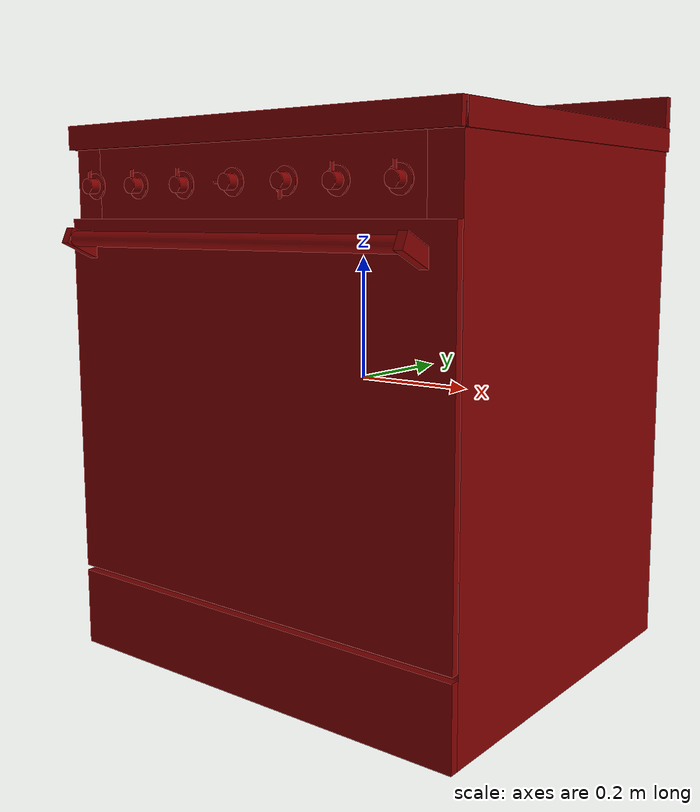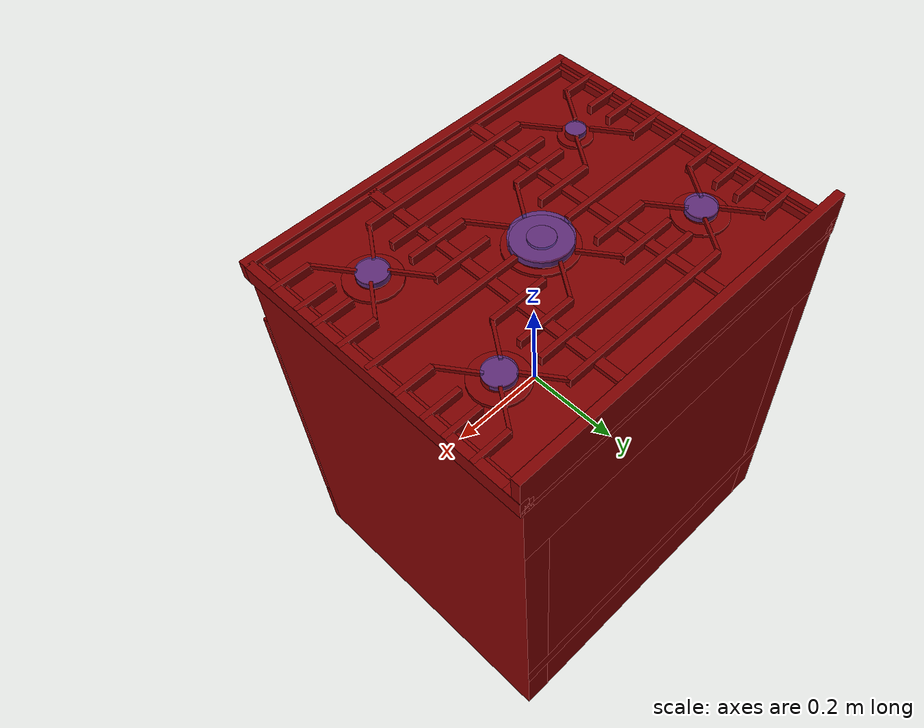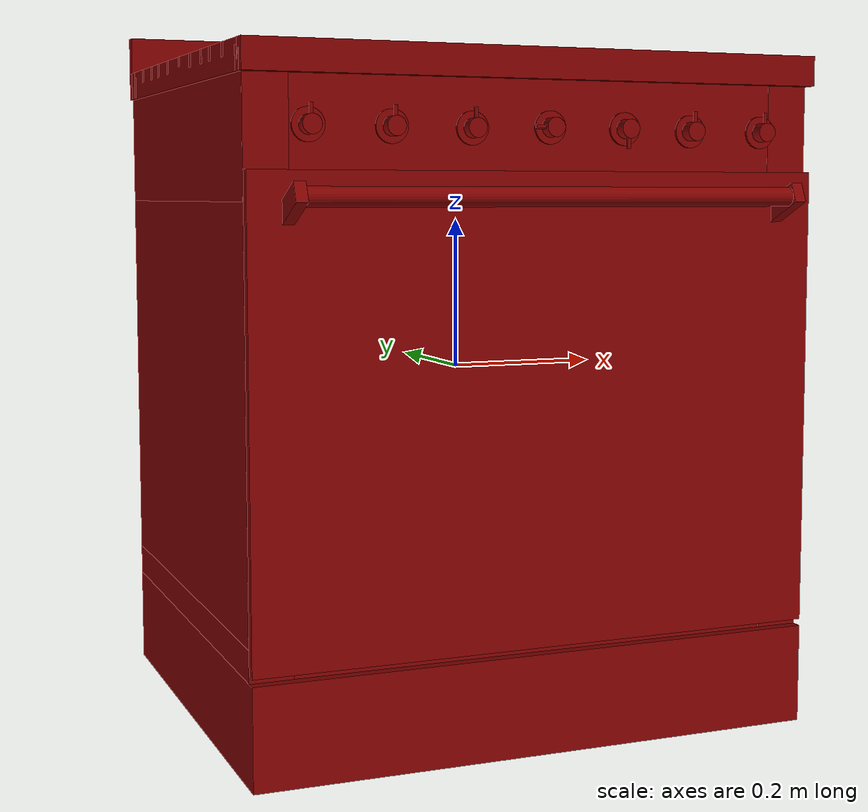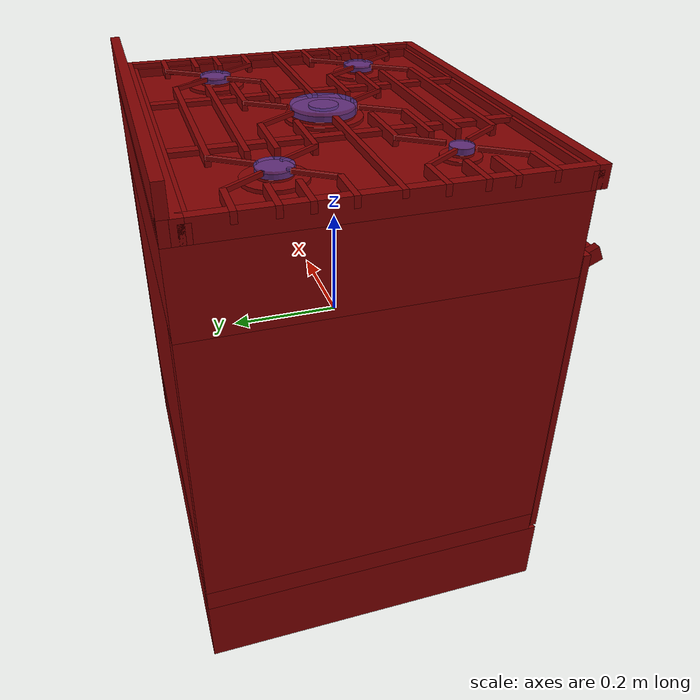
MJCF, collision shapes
<?xml version='1.0' encoding='UTF-8'?>
<mujoco model="model">
  <option timestep="0.002" gravity="0.0 0.0 -9.81"/>
  <compiler angle="radian"/>
  <asset>
    <mesh file="visuals/knob_center.obj" name="knob_center_vis"/>
    <mesh file="visuals/knob_front_left.obj" name="knob_front_left_vis"/>
    <mesh file="visuals/knob_front_right.obj" name="knob_front_right_vis"/>
    <mesh file="visuals/knob_rear_left.obj" name="knob_rear_left_vis"/>
    <mesh file="visuals/knob_rear_right.obj" name="knob_rear_right_vis"/>
    <mesh file="visuals/Body001.obj" name="Body001_vis"/>
    <mesh file="visuals/Door001.obj" name="Door001_vis"/>
    <mesh file="visuals/Door001_Clear.obj" name="Door001_Clear_vis"/>
    <mesh file="visuals/Knob001.obj" name="Knob001_vis"/>
    <mesh file="visuals/Knob002.obj" name="Knob002_vis"/>
    <mesh file="visuals/Shelf001.obj" name="Shelf001_vis"/>
    <texture file="visuals/T_BC001.png" name="Body001_material" type="2d"/>
    <material name="Body001_material" rgba="1 1 1 1.0" texture="Body001_material" shininess="0.1" specular="4"/>
    <texture file="visuals/T_BC001.png" name="knob_center_material" type="2d"/>
    <material name="knob_center_material" rgba="1 1 1 1.0" texture="knob_center_material" shininess="0.4472135901451111" specular="0.3103448502657381"/>
    <texture file="visuals/T_BC001.png" name="knob_front_left_material" type="2d"/>
    <material name="knob_front_left_material" rgba="1 1 1 1.0" texture="knob_front_left_material" shininess="0.4472135901451111" specular="0.3103448502657381"/>
    <texture file="visuals/T_BC001.png" name="knob_front_right_material" type="2d"/>
    <material name="knob_front_right_material" rgba="1 1 1 1.0" texture="knob_front_right_material" shininess="0.4472135901451111" specular="0.3103448502657381"/>
    <texture file="visuals/T_BC001.png" name="knob_rear_left_material" type="2d"/>
    <material name="knob_rear_left_material" rgba="1 1 1 1.0" texture="knob_rear_left_material" shininess="0.4472135901451111" specular="0.3103448502657381"/>
    <texture file="visuals/T_BC001.png" name="knob_rear_right_material" type="2d"/>
    <material name="knob_rear_right_material" rgba="1 1 1 1.0" texture="knob_rear_right_material" shininess="0.4472135901451111" specular="0.3103448502657381"/>
    <texture file="visuals/T_BC001.png" name="Door001_material" type="2d"/>
    <material name="Door001_material" rgba="1 1 1 1.0" texture="Door001_material" shininess="0.1" specular="0.3103448502657381"/>
    <texture file="visuals/T_BC001.png" name="Door001_Clear_material" type="2d"/>
    <material name="Door001_Clear_material" rgba="1 1 1 0.5" texture="Door001_Clear_material" shininess="0.4472135901451111" specular="0.3103448502657381"/>
    <texture file="visuals/T_BC001.png" name="Knob001_material" type="2d"/>
    <material name="Knob001_material" rgba="1 1 1 1.0" texture="Knob001_material" shininess="0.4472135901451111" specular="0.3103448502657381"/>
    <texture file="visuals/T_BC001.png" name="Knob002_material" type="2d"/>
    <material name="Knob002_material" rgba="1 1 1 1.0" texture="Knob002_material" shininess="0.4472135901451111" specular="0.3103448502657381"/>
    <texture file="visuals/T_BC001.png" name="Shelf001_material" type="2d"/>
    <material name="Shelf001_material" rgba="1 1 1 1.0" texture="Shelf001_material" shininess="0.1" specular="4"/>
  </asset>
  <default>
    <default class="visual">
      <geom conaffinity="0" contype="0" group="1" type="mesh"/>
    </default>
    <default class="collision">
      <geom group="0" rgba="0.5 0 0 0.5"/>
    </default>
    <default class="spawn">
      <geom group="0" rgba="1 1 1 0.5" contype="0" conaffinity="0"/>
      <site group="0" rgba="1 1 1 0.5"/>
    </default>
    <default class="region">
      <geom group="1" conaffinity="0" contype="0" rgba="0 1 0 0"/>
    </default>
  </default>
  <worldbody>
    <body>
      <body name="object">
        <geom mesh="Body001_vis" type="mesh" solimp="0.998 0.998 0.001" solref="0.001 1" friction="0.95 0.3 0.1" class="visual" material="Body001_material"/>
        <geom class="collision" type="box" pos="-0.342986 0.031909 -0.043688" size="0.027025170624256134 0.3089369833469391 0.41411277651786804" quat="1.0 0.0 0.0 0.0" density="1000.0"/>
        <geom class="collision" type="box" pos="0.002083 0.298579 -0.043688" size="0.3236723244190216 0.042266372591257095 0.41411277651786804" quat="1.0 0.0 0.0 0.0" density="1000.0"/>
        <geom class="collision" type="box" pos="-0.000000 0.332272 0.414247" size="0.3741699457168579 0.008573531173169613 0.04382246360182762" quat="1.0 0.0 0.0 0.0" density="1000.0"/>
        <geom class="collision" type="box" pos="0.342985 0.031909 -0.043689" size="0.02702515758574009 0.3089369833469391 0.41411277651786804" quat="1.0 0.0 0.0 0.0" density="1000.0"/>
        <geom class="collision" type="box" pos="-0.000001 0.024928 -0.394089" size="0.37001046538352966 0.3159174621105194 0.06371200084686279" quat="1.0 0.0 0.0 0.0" density="1000.0"/>
        <geom class="collision" type="box" pos="-0.000001 0.032058 0.297706" size="0.37001046538352966 0.3087884187698364 0.07271813601255417" quat="1.0 0.0 0.0 0.0" density="1000.0"/>
        <geom class="collision" type="box" pos="-0.000001 0.032058 -0.312724" size="0.3700103759765625 0.3087884187698364 0.022748181596398354" quat="1.0 0.0 0.0 0.0" density="1000.0"/>
        <geom class="collision" type="box" pos="-0.000248 0.032058 0.377407" size="0.37204205989837646 0.3087884187698364 0.006982351653277874" quat="1.0 0.0 0.0 0.0" density="1000.0"/>
        <geom class="collision" type="box" pos="-0.365455 0.032058 0.389271" size="0.00871529895812273 0.3087884187698364 0.01884656585752964" quat="1.0 0.0 0.0 0.0" density="1000.0"/>
        <geom class="collision" type="box" pos="-0.357323 0.032058 0.385181" size="0.00871529895812273 0.3087884187698364 0.014756828546524048" quat="1.0 0.0 0.0 0.0" density="1000.0"/>
        <geom class="collision" type="box" pos="0.357460 0.032058 0.385181" size="0.00871529895812273 0.3087884187698364 0.014756828546524048" quat="1.0 0.0 0.0 0.0" density="1000.0"/>
        <geom class="collision" type="box" pos="0.366119 0.032058 0.389271" size="0.00871529895812273 0.3087884187698364 0.01884656585752964" quat="1.0 0.0 0.0 0.0" density="1000.0"/>
        <geom class="collision" type="box" pos="0.000115 -0.281766 0.389271" size="0.3743075728416443 0.009529121220111847 0.01884656585752964" quat="1.0 0.0 0.0 0.0" density="1000.0"/>
        <geom class="collision" type="box" pos="0.000115 -0.272821 0.385181" size="0.3743075728416443 0.008715322241187096 0.014756828546524048" quat="1.0 0.0 0.0 0.0" density="1000.0"/>
        <geom class="collision" type="box" pos="0.000115 0.307005 0.385181" size="0.3743075728416443 0.008715322241187096 0.014756828546524048" quat="1.0 0.0 0.0 0.0" density="1000.0"/>
        <geom class="collision" type="box" pos="0.000115 0.315950 0.389271" size="0.3743075728416443 0.009529121220111847 0.01884656585752964" quat="1.0 0.0 0.0 0.0" density="1000.0"/>
        <geom class="collision" type="box" pos="-0.336585 0.245971 0.399377" size="0.03760707378387451 0.004800615832209587 0.008929496631026268" quat="1.0 0.0 0.0 0.0" density="1000.0"/>
        <geom class="collision" type="box" pos="-0.278993 0.215752 0.404576" size="0.0029910451266914606 0.04062972590327263 0.0037304009310901165" quat="0.9540290236473083 0.0 0.0 0.29971426725387573" density="1000.0"/>
        <geom class="collision" type="box" pos="-0.336585 0.187721 0.399377" size="0.03760707378387451 0.004800615832209587 0.008929496631026268" quat="1.0 0.0 0.0 0.0" density="1000.0"/>
        <geom class="collision" type="box" pos="-0.336585 0.142857 0.399377" size="0.03760707378387451 0.004800615832209587 0.008929496631026268" quat="1.0 0.0 0.0 0.0" density="1000.0"/>
        <geom class="collision" type="box" pos="-0.278993 0.114682 0.404576" size="0.0029910451266914606 0.04062972590327263 0.0037304009310901165" quat="0.9540290236473083 0.0 -0.0 -0.29971426725387573" density="1000.0"/>
        <geom class="collision" type="box" pos="-0.336585 0.084463 0.399377" size="0.03760707378387451 0.004800615832209587 0.008929496631026268" quat="1.0 0.0 0.0 0.0" density="1000.0"/>
        <geom class="collision" type="box" pos="-0.218020 0.018129 0.402040" size="0.1561717838048935 0.004800615832209587 0.006361943203955889" quat="1.0 0.0 0.0 0.0" density="1000.0"/>
        <geom class="collision" type="box" pos="-0.119106 0.084463 0.399377" size="0.058462776243686676 0.004800615832209587 0.008929496631026268" quat="1.0 0.0 0.0 0.0" density="1000.0"/>
        <geom class="collision" type="box" pos="-0.197554 0.114682 0.404576" size="0.0029910451266914606 0.04062972590327263 0.0037304009310901165" quat="0.9540290236473083 0.0 0.0 0.29971426725387573" density="1000.0"/>
        <geom class="collision" type="box" pos="-0.119106 0.142857 0.399377" size="0.058462776243686676 0.004800615832209587 0.008929496631026268" quat="1.0 0.0 0.0 0.0" density="1000.0"/>
        <geom class="collision" type="box" pos="0.000368 0.187721 0.399377" size="0.17793674767017365 0.004800615832209587 0.008929496631026268" quat="1.0 0.0 0.0 0.0" density="1000.0"/>
        <geom class="collision" type="box" pos="-0.197554 0.215752 0.404576" size="0.0029910451266914606 0.04062972590327263 0.0037304009310901165" quat="0.9540290236473083 0.0 -0.0 -0.29971426725387573" density="1000.0"/>
        <geom class="collision" type="box" pos="0.000368 0.245971 0.399377" size="0.17793674767017365 0.004800615832209587 0.008929496631026268" quat="1.0 0.0 0.0 0.0" density="1000.0"/>
        <geom class="collision" type="box" pos="0.214716 0.018129 0.402040" size="0.1561717838048935 0.004800615832209587 0.006361943203955889" quat="1.0 0.0 0.0 0.0" density="1000.0"/>
        <geom class="collision" type="box" pos="-0.040634 0.111394 0.404576" size="0.0029910451266914606 0.04062972590327263 0.0037304009310901165" quat="0.9540290236473083 0.0 0.0 0.29971426725387573" density="1000.0"/>
        <geom class="collision" type="box" pos="0.040637 0.111394 0.404576" size="0.0029910451266914606 0.04062972590327263 0.0037304009310901165" quat="0.9540290236473083 0.0 -0.0 -0.29971426725387573" density="1000.0"/>
        <geom class="collision" type="box" pos="0.119110 0.142857 0.399377" size="0.058462776243686676 0.004800615832209587 0.008929496631026268" quat="1.0 0.0 0.0 0.0" density="1000.0"/>
        <geom class="collision" type="box" pos="0.119110 0.084463 0.399377" size="0.058462776243686676 0.004800615832209587 0.008929496631026268" quat="1.0 0.0 0.0 0.0" density="1000.0"/>
        <geom class="collision" type="box" pos="0.336475 0.084463 0.399377" size="0.03760707378387451 0.004800615832209587 0.008929496631026268" quat="1.0 0.0 0.0 0.0" density="1000.0"/>
        <geom class="collision" type="box" pos="0.278883 0.114682 0.404576" size="0.0029910451266914606 0.04062972590327263 0.0037304009310901165" quat="0.9540290236473083 0.0 0.0 0.29971426725387573" density="1000.0"/>
        <geom class="collision" type="box" pos="0.336475 0.142857 0.399377" size="0.03760707378387451 0.004800615832209587 0.008929496631026268" quat="1.0 0.0 0.0 0.0" density="1000.0"/>
        <geom class="collision" type="box" pos="0.336475 0.187721 0.399377" size="0.03760707378387451 0.004800615832209587 0.008929496631026268" quat="1.0 0.0 0.0 0.0" density="1000.0"/>
        <geom class="collision" type="box" pos="0.278883 0.215752 0.404576" size="0.0029910451266914606 0.04062972590327263 0.0037304009310901165" quat="0.9540290236473083 0.0 -0.0 -0.29971426725387573" density="1000.0"/>
        <geom class="collision" type="box" pos="0.336475 0.245971 0.399377" size="0.03760707378387451 0.004800615832209587 0.008929496631026268" quat="1.0 0.0 0.0 0.0" density="1000.0"/>
        <geom class="collision" type="box" pos="0.197271 0.114682 0.404576" size="0.0029910451266914606 0.04062972590327263 0.0037304009310901165" quat="0.9540290236473083 0.0 -0.0 -0.29971426725387573" density="1000.0"/>
        <geom class="collision" type="box" pos="0.197271 0.215752 0.404576" size="0.0029910451266914606 0.04062972590327263 0.0037304009310901165" quat="0.9540290236473083 0.0 0.0 0.29971426725387573" density="1000.0"/>
        <geom class="collision" type="box" pos="-0.119548 0.014281 0.395602" size="0.00970555655658245 0.2837180197238922 0.0043358406983315945" quat="1.0 0.0 0.0 0.0" density="1000.0"/>
        <geom class="collision" type="box" pos="0.117939 0.014281 0.395602" size="0.00970555655658245 0.2837180197238922 0.0043358406983315945" quat="1.0 0.0 0.0 0.0" density="1000.0"/>
        <geom class="collision" type="box" pos="0.197271 -0.174837 0.404576" size="0.0029910451266914606 0.04062972590327263 0.0037304009310901165" quat="0.9540290236473083 0.0 -0.0 -0.29971426725387573" density="1000.0"/>
        <geom class="collision" type="box" pos="0.197271 -0.073768 0.404576" size="0.0029910451266914606 0.04062972590327263 0.0037304009310901165" quat="0.9540290236473083 0.0 0.0 0.29971426725387573" density="1000.0"/>
        <geom class="collision" type="box" pos="0.336475 -0.206639 0.399377" size="0.03760707378387451 0.004800615832209587 0.008929496631026268" quat="1.0 0.0 0.0 0.0" density="1000.0"/>
        <geom class="collision" type="box" pos="0.278883 -0.174837 0.404576" size="0.0029910451266914606 0.04062972590327263 0.0037304009310901165" quat="0.9540290236473083 0.0 0.0 0.29971426725387573" density="1000.0"/>
        <geom class="collision" type="box" pos="0.336475 -0.146807 0.399377" size="0.03760707378387451 0.004800615832209587 0.008929496631026268" quat="1.0 0.0 0.0 0.0" density="1000.0"/>
        <geom class="collision" type="box" pos="0.336475 -0.101943 0.399377" size="0.03760707378387451 0.004800615832209587 0.008929496631026268" quat="1.0 0.0 0.0 0.0" density="1000.0"/>
        <geom class="collision" type="box" pos="0.278883 -0.073768 0.404576" size="0.0029910451266914606 0.04062972590327263 0.0037304009310901165" quat="0.9540290236473083 0.0 -0.0 -0.29971426725387573" density="1000.0"/>
        <geom class="collision" type="box" pos="0.336475 -0.043549 0.399377" size="0.03760707378387451 0.004800615832209587 0.008929496631026268" quat="1.0 0.0 0.0 0.0" density="1000.0"/>
        <geom class="collision" type="box" pos="0.119110 -0.043549 0.399377" size="0.058462776243686676 0.004800615832209587 0.008929496631026268" quat="1.0 0.0 0.0 0.0" density="1000.0"/>
        <geom class="collision" type="box" pos="0.119110 -0.101943 0.399377" size="0.058462776243686676 0.004800615832209587 0.008929496631026268" quat="1.0 0.0 0.0 0.0" density="1000.0"/>
        <geom class="collision" type="box" pos="0.040637 -0.070480 0.404576" size="0.0029910451266914606 0.04062972590327263 0.0037304009310901165" quat="0.9540290236473083 0.0 0.0 0.29971426725387573" density="1000.0"/>
        <geom class="collision" type="box" pos="-0.040634 -0.070480 0.404576" size="0.0029910451266914606 0.04062972590327263 0.0037304009310901165" quat="0.9540290236473083 0.0 -0.0 -0.29971426725387573" density="1000.0"/>
        <geom class="collision" type="box" pos="0.000368 -0.207766 0.399377" size="0.17793674767017365 0.004800615832209587 0.008929496631026268" quat="1.0 0.0 0.0 0.0" density="1000.0"/>
        <geom class="collision" type="box" pos="-0.197554 -0.174837 0.404576" size="0.0029910451266914606 0.04062972590327263 0.0037304009310901165" quat="0.9540290236473083 0.0 0.0 0.29971426725387573" density="1000.0"/>
        <geom class="collision" type="box" pos="0.000368 -0.148142 0.399377" size="0.17793674767017365 0.004800615832209587 0.008929496631026268" quat="1.0 0.0 0.0 0.0" density="1000.0"/>
        <geom class="collision" type="box" pos="-0.119106 -0.101943 0.399377" size="0.058462776243686676 0.004800615832209587 0.008929496631026268" quat="1.0 0.0 0.0 0.0" density="1000.0"/>
        <geom class="collision" type="box" pos="-0.197554 -0.073768 0.404576" size="0.0029910451266914606 0.04062972590327263 0.0037304009310901165" quat="0.9540290236473083 0.0 -0.0 -0.29971426725387573" density="1000.0"/>
        <geom class="collision" type="box" pos="-0.119106 -0.043549 0.399377" size="0.058462776243686676 0.004800615832209587 0.008929496631026268" quat="1.0 0.0 0.0 0.0" density="1000.0"/>
        <geom class="collision" type="box" pos="-0.336585 -0.043549 0.399377" size="0.03760707378387451 0.004800615832209587 0.008929496631026268" quat="1.0 0.0 0.0 0.0" density="1000.0"/>
        <geom class="collision" type="box" pos="-0.278993 -0.073768 0.404576" size="0.0029910451266914606 0.04062972590327263 0.0037304009310901165" quat="0.9540290236473083 0.0 0.0 0.29971426725387573" density="1000.0"/>
        <geom class="collision" type="box" pos="-0.336585 -0.101943 0.399377" size="0.03760707378387451 0.004800615832209587 0.008929496631026268" quat="1.0 0.0 0.0 0.0" density="1000.0"/>
        <geom class="collision" type="box" pos="-0.336585 -0.146807 0.399377" size="0.03760707378387451 0.004800615832209587 0.008929496631026268" quat="1.0 0.0 0.0 0.0" density="1000.0"/>
        <geom class="collision" type="box" pos="-0.278993 -0.174837 0.404576" size="0.0029910451266914606 0.04062972590327263 0.0037304009310901165" quat="0.9540290236473083 0.0 -0.0 -0.29971426725387573" density="1000.0"/>
        <geom class="collision" type="box" pos="-0.336585 -0.207255 0.399377" size="0.03760707378387451 0.004800615832209587 0.008929496631026268" quat="1.0 0.0 0.0 0.0" density="1000.0"/>
        <geom class="collision" type="cylinder" pos="-0.000083 0.019892 0.397896" size="0.05461094155907631 0.006898408755660057" quat="1.0 0.0 0.0 0.0" density="1000.0"/>
        <geom class="collision" type="cylinder" pos="-0.000083 0.019892 0.406626" size="0.025446781888604164 0.003214416326954961" quat="1.0 0.0 0.0 0.0" density="1000.0"/>
        <geom class="collision" type="cylinder" pos="-0.237981 -0.124906 0.387691" size="0.032699648290872574 0.002829879755154252" quat="1.0 0.0 0.0 0.0" density="1000.0"/>
        <geom class="collision" type="cylinder" pos="-0.238153 -0.124960 0.398207" size="0.01917131431400776 0.0068155075423419476" quat="1.0 0.0 0.0 0.0" density="1000.0"/>
        <geom class="collision" type="cylinder" pos="-0.238691 0.162183 0.398473" size="0.028326213359832764 0.006211481988430023" quat="1.0 0.0 0.0 0.0" density="1000.0"/>
        <geom class="collision" type="cylinder" pos="-0.238421 0.162267 0.386317" size="0.0514848493039608 0.0044555808417499065" quat="1.0 0.0 0.0 0.0" density="1000.0"/>
        <geom class="collision" type="cylinder" pos="0.238684 0.162267 0.386317" size="0.0514848493039608 0.0044555808417499065" quat="1.0 0.0 0.0 0.0" density="1000.0"/>
        <geom class="collision" type="cylinder" pos="0.238414 0.162183 0.398473" size="0.028326213359832764 0.006211481988430023" quat="1.0 0.0 0.0 0.0" density="1000.0"/>
        <geom class="collision" type="cylinder" pos="0.238414 -0.124672 0.398473" size="0.028326213359832764 0.006211481988430023" quat="1.0 0.0 0.0 0.0" density="1000.0"/>
        <geom class="collision" type="cylinder" pos="0.238684 -0.124587 0.386317" size="0.0514848493039608 0.0044555808417499065" quat="1.0 0.0 0.0 0.0" density="1000.0"/>
        <geom class="collision" type="cylinder" pos="0.000406 0.019076 0.387601" size="0.06797618418931961 0.0031710155308246613" quat="1.0 0.0 0.0 0.0" density="1000.0"/>
        <geom class="collision" type="box" pos="-0.308232 -0.015212 -0.053652" size="0.007938775233924389 0.23885123431682587 0.005848837085068226" quat="1.0 0.0 0.0 0.0" density="1000.0"/>
        <geom class="collision" type="box" pos="0.309636 -0.015212 -0.053652" size="0.007938775233924389 0.23885123431682587 0.005848837085068226" quat="1.0 0.0 0.0 0.0" density="1000.0"/>
        <body name="knob_center">
          <joint axis="0.0 -1.0 0.0" pos="-0.099910 -0.302940 0.310331" limited="true" name="knob_center_joint" range="0.0 3.6651914291880923" type="hinge" damping="0.05" armature="0.001" springref="-0.1"/>
          <geom mesh="knob_center_vis" type="mesh" solimp="0.998 0.998 0.001" solref="0.001 1" friction="0.95 0.3 0.1" class="visual" material="knob_center_material"/>
          <geom class="collision" type="cylinder" pos="-0.099910 -0.298394 0.310359" size="0.019924063235521317 0.0015801219269633293" quat="0.23711955547332764 0.237119659781456 0.6661639213562012 -0.6661638021469116" density="1000.0"/>
          <geom class="collision" type="cylinder" pos="-0.099910 -0.292926 0.310359" size="0.007736132014542818 0.003806669032201171" quat="0.23711955547332764 0.237119659781456 0.6661639213562012 -0.6661638021469116" density="1000.0"/>
          <geom class="collision" type="cylinder" pos="-0.099910 -0.308061 0.310359" size="0.011577902361750603 0.008451039902865887" quat="0.23711955547332764 0.237119659781456 0.6661639213562012 -0.6661638021469116" density="1000.0"/>
          <geom class="collision" type="cylinder" pos="-0.099873 -0.310265 0.326856" size="0.002389253582805395 0.007319331169128418" quat="0.0016244205180555582 -4.2252992216162966e-08 0.9999986886978149 1.1931875576465245e-07" density="1000.0"/>
        </body>
        <body name="knob_front_left">
          <joint axis="0.0 -1.0 0.0" pos="-0.299765 -0.302940 0.311589" limited="true" name="knob_front_left_joint" range="0.0 3.6651914291880923" type="hinge" damping="0.05" armature="0.001"/>
          <geom mesh="knob_front_left_vis" type="mesh" solimp="0.998 0.998 0.001" solref="0.001 1" friction="0.95 0.3 0.1" class="visual" material="knob_front_left_material"/>
          <geom class="collision" type="cylinder" pos="-0.299667 -0.310265 0.328179" size="0.002389253582805395 0.007319331169128418" quat="0.0016244205180555582 -4.2252992216162966e-08 0.9999986886978149 1.1931875576465245e-07" density="1000.0"/>
          <geom class="collision" type="cylinder" pos="-0.299704 -0.308061 0.311682" size="0.011577902361750603 0.008451039902865887" quat="0.23711955547332764 0.237119659781456 0.6661639213562012 -0.6661638021469116" density="1000.0"/>
          <geom class="collision" type="cylinder" pos="-0.299704 -0.292926 0.311682" size="0.007736132014542818 0.003806669032201171" quat="0.23711955547332764 0.237119659781456 0.6661639213562012 -0.6661638021469116" density="1000.0"/>
          <geom class="collision" type="cylinder" pos="-0.299704 -0.298394 0.311682" size="0.019924063235521317 0.0015801219269633293" quat="0.23711955547332764 0.237119659781456 0.6661639213562012 -0.6661638021469116" density="1000.0"/>
        </body>
        <body name="knob_front_right">
          <joint axis="0.0 -1.0 0.0" pos="0.289952 -0.302940 0.310133" limited="true" name="knob_front_right_joint" range="0.0 3.6651914291880923" type="hinge" damping="0.05" armature="0.001"/>
          <geom mesh="knob_front_right_vis" type="mesh" solimp="0.998 0.998 0.001" solref="0.001 1" friction="0.95 0.3 0.1" class="visual" material="knob_front_right_material"/>
          <geom class="collision" type="cylinder" pos="0.290096 -0.310265 0.326759" size="0.002389253582805395 0.007319331169128418" quat="0.0016244205180555582 -4.2252992216162966e-08 0.9999986886978149 1.1931875576465245e-07" density="1000.0"/>
          <geom class="collision" type="cylinder" pos="0.290059 -0.308061 0.310262" size="0.011577902361750603 0.008451039902865887" quat="0.23711955547332764 0.237119659781456 0.6661639213562012 -0.6661638021469116" density="1000.0"/>
          <geom class="collision" type="cylinder" pos="0.290059 -0.292926 0.310262" size="0.007736132014542818 0.003806669032201171" quat="0.23711955547332764 0.237119659781456 0.6661639213562012 -0.6661638021469116" density="1000.0"/>
          <geom class="collision" type="cylinder" pos="0.290059 -0.298394 0.310262" size="0.019924063235521317 0.0015801219269633293" quat="0.23711955547332764 0.237119659781456 0.6661639213562012 -0.6661638021469116" density="1000.0"/>
        </body>
        <body name="knob_rear_left">
          <joint axis="0.0 -1.0 0.0" pos="-0.199765 -0.302940 0.310973" limited="true" name="knob_rear_left_joint" range="0.0 3.6651914291880923" type="hinge" damping="0.05" armature="0.001"/>
          <geom mesh="knob_rear_left_vis" type="mesh" solimp="0.998 0.998 0.001" solref="0.001 1" friction="0.95 0.3 0.1" class="visual" material="knob_rear_left_material"/>
          <geom class="collision" type="cylinder" pos="-0.199669 -0.310265 0.327576" size="0.002389253582805395 0.007319331169128418" quat="0.0016244205180555582 -4.2252992216162966e-08 0.9999986886978149 1.1931875576465245e-07" density="1000.0"/>
          <geom class="collision" type="cylinder" pos="-0.199706 -0.308061 0.311079" size="0.011577902361750603 0.008451039902865887" quat="0.23711955547332764 0.237119659781456 0.6661639213562012 -0.6661638021469116" density="1000.0"/>
          <geom class="collision" type="cylinder" pos="-0.199706 -0.292926 0.311079" size="0.007736132014542818 0.003806669032201171" quat="0.23711955547332764 0.237119659781456 0.6661639213562012 -0.6661638021469116" density="1000.0"/>
          <geom class="collision" type="cylinder" pos="-0.199706 -0.298394 0.311079" size="0.019924063235521317 0.0015801219269633293" quat="0.23711955547332764 0.237119659781456 0.6661639213562012 -0.6661638021469116" density="1000.0"/>
        </body>
        <body name="knob_rear_right">
          <joint axis="0.0 -1.0 0.0" pos="0.189957 -0.302940 0.310275" limited="true" name="knob_rear_right_joint" range="0.0 3.6651914291880923" type="hinge" damping="0.05" armature="0.001"/>
          <geom mesh="knob_rear_right_vis" type="mesh" solimp="0.998 0.998 0.001" solref="0.001 1" friction="0.95 0.3 0.1" class="visual" material="knob_rear_right_material"/>
          <geom class="collision" type="cylinder" pos="0.190473 -0.310265 0.327215" size="0.002389253582805395 0.007319331169128418" quat="0.0016244205180555582 -4.2252992216162966e-08 0.9999986886978149 1.1931875576465245e-07" density="1000.0"/>
          <geom class="collision" type="cylinder" pos="0.189913 -0.308061 0.310292" size="0.011577902361750603 0.008451039902865887" quat="0.23711955547332764 0.237119659781456 0.6661639213562012 -0.6661638021469116" density="1000.0"/>
          <geom class="collision" type="cylinder" pos="0.190437 -0.292926 0.310718" size="0.007736132014542818 0.003806669032201171" quat="0.23711955547332764 0.237119659781456 0.6661639213562012 -0.6661638021469116" density="1000.0"/>
          <geom class="collision" type="cylinder" pos="0.189913 -0.298394 0.310292" size="0.019924063235521317 0.0015801219269633293" quat="0.23711955547332764 0.237119659781456 0.6661639213562012 -0.6661638021469116" density="1000.0"/>
        </body>
        <body name="Door001">
          <joint axis="1.0 0.0 0.0" pos="-0.000001 -0.290838 -0.321167" limited="true" name="Door001_joint" range="0.0 1.5707963267948966" type="hinge" damping="1" frictionloss="1" armature=".01" stiffness="6" springref="-3"/>
          <geom mesh="Door001_vis" type="mesh" solimp="0.998 0.998 0.001" solref="0.001 1" friction="0.95 0.3 0.1" class="visual" material="Door001_material"/>
          <geom class="collision" type="box" pos="-0.000001 -0.284672 -0.030118" size="0.3700103759765625 0.006188513711094856 0.29148954153060913" quat="1.0 0.0 0.0 0.0" density="1000.0"/>
          <geom class="collision" type="box" pos="0.321349 -0.313295 0.223491" size="0.0073158396407961845 0.030376754701137543 0.012979610823094845" quat="0.9768823981285095 -0.21377751231193542 -4.746814326315972e-17 1.4460923565373291e-25" density="1000.0"/>
          <geom class="collision" type="box" pos="-0.321241 -0.313295 0.223491" size="0.0073158396407961845 0.030376754701137543 0.012979610823094845" quat="0.9768823981285095 -0.21377751231193542 -4.746814326315972e-17 1.4460923565373291e-25" density="1000.0"/>
          <geom class="collision" type="cylinder" pos="0.000274 -0.329080 0.230641" size="0.011848964728415012 0.31535735726356506" quat="0.7071068286895752 -0.0 0.7071067690849304 0.0" density="1000.0"/>
          <body name="Door001_Clear">
            <geom mesh="Door001_Clear_vis" type="mesh" solimp="0.998 0.998 0.001" solref="0.001 1" friction="0.95 0.3 0.1" class="visual" material="Door001_Clear_material"/>
            <geom class="collision" type="box" pos="0.000220 -0.284487 -0.020450" size="0.27437999844551086 0.004157399293035269 0.1755835860967636" quat="1.0 0.0 0.0 0.0" density="1000.0"/>
          </body>
        </body>
        <body name="Knob001">
          <joint axis="0.0 1.0 0.0" pos="0.000297 -0.302940 0.312546" limited="true" name="Knob001_joint" range="0.0 5.235987755982989" type="hinge" damping="0.05" armature="0.001"/>
          <geom mesh="Knob001_vis" type="mesh" solimp="0.998 0.998 0.001" solref="0.001 1" friction="0.95 0.3 0.1" class="visual" material="Knob001_material"/>
          <geom class="collision" type="cylinder" pos="-0.016227 -0.310265 0.312708" size="0.002389253582805395 0.007319327909499407" quat="0.7055845856666565 -1.9397692341271977e-08 0.7086256742477417 5.4778428904000975e-08" density="1000.0"/>
          <geom class="collision" type="cylinder" pos="0.000269 -0.308061 0.312547" size="0.011577902361750603 0.008451039902865887" quat="0.6375680565834045 0.6375681161880493 0.305789053440094 -0.3057890236377716" density="1000.0"/>
          <geom class="collision" type="cylinder" pos="0.000269 -0.292926 0.312547" size="0.007736128754913807 0.003806669032201171" quat="0.6375678777694702 0.6375681757926941 0.30578911304473877 -0.30578917264938354" density="1000.0"/>
          <geom class="collision" type="cylinder" pos="0.000269 -0.298394 0.312547" size="0.019924039021134377 0.0015801220433786511" quat="0.6375679969787598 0.6375681757926941 0.305789053440094 -0.305789053440094" density="1000.0"/>
        </body>
        <body name="Knob002">
          <joint axis="0.0 1.0 0.0" pos="0.099540 -0.302940 0.312182" limited="true" name="Knob002_joint" range="0.0 5.585053606381854" type="hinge" damping="0.05" armature="0.001" springref="-0.1"/>
          <geom mesh="Knob002_vis" type="mesh" solimp="0.998 0.998 0.001" solref="0.001 1" friction="0.95 0.3 0.1" class="visual" material="Knob002_material"/>
          <geom class="collision" type="cylinder" pos="0.099596 -0.310265 0.295657" size="0.002389253582805395 0.007319313008338213" quat="0.9999902248382568 1.5157841204427314e-08 -0.004418588243424892 -4.28044408806727e-08" density="1000.0"/>
          <geom class="collision" type="cylinder" pos="0.099540 -0.308061 0.312154" size="0.011577902361750603 0.008451039902865887" quat="0.665498673915863 0.6654988527297974 -0.23897995054721832 0.23897986114025116" density="1000.0"/>
          <geom class="collision" type="cylinder" pos="0.099540 -0.292926 0.312154" size="0.007736132014542818 0.003806669032201171" quat="0.6654985547065735 0.6654989123344421 -0.2389800250530243 0.2389799803495407" density="1000.0"/>
          <geom class="collision" type="cylinder" pos="0.099540 -0.298394 0.312154" size="0.01992405392229557 0.0015801219269633293" quat="0.6654985547065735 0.6654989123344421 -0.2389800250530243 0.2389799803495407" density="1000.0"/>
        </body>
        <body name="Shelf001">
          <joint axis="0.0 -1.0 0.0" pos="0.000607 -0.017357 -0.041992" limited="true" name="Shelf001_joint" range="0.0 0.4" type="slide" damping="1" frictionloss="1" armature=".01" stiffness="0.05"/>
          <geom mesh="Shelf001_vis" type="mesh" solimp="0.998 0.998 0.001" solref="0.001 1" friction="0.95 0.3 0.1" class="visual" material="Shelf001_material"/>
          <geom class="collision" type="box" pos="0.001716 -0.016488 -0.039815" size="0.31011250615119934 0.2305225282907486 0.006448785308748484" quat="1.0 0.0 0.0 0.0" density="1000.0"/>
        </body>
        <geom class="region" name="reg_int" type="box" pos="9.000000000009e-06 -0.004747000000000001 -0.032477000000000006" size="0.31637400000000004 0.260195 0.25735600000000003"/>
        <site type="cylinder" rgba="0.3 0.4 1 0.5" size="0.029327258467674255 0.006095296237617731" pos="-0.238648 0.161552 0.402649" name="burner_on_rear_left"/>
        <site type="cylinder" rgba="0.3 0.4 1 0.5" size="0.019440459087491035 0.00544297881424427" pos="-0.238726 -0.124904 0.401334" name="burner_on_front_left"/>
        <site type="cylinder" rgba="0.3 0.4 1 0.5" size="0.02889215759932995 0.006037180311977863" pos="0.238187 -0.123547 0.402249" name="burner_on_front_right"/>
        <site type="cylinder" rgba="0.3 0.4 1 0.5" size="0.028583304956555367 0.005852416157722473" pos="0.237952 0.162707 0.402627" name="burner_on_rear_right"/>
        <site type="cylinder" rgba="0.3 0.4 1 0.5" size="0.05686085671186447 0.007977021858096123" pos="0.000211 0.019623 0.403816" name="burner_on_center"/>
        <site name="burner_rear_left_place_site" type="cylinder" rgba="0.3 0.4 1 0" size="0.029327258467674255 0.006095296237617731" pos="-0.238648 0.161552 0.402649"/>
        <site name="burner_front_left_place_site" type="cylinder" rgba="0.3 0.4 1 0" size="0.019440459087491035 0.00544297881424427" pos="-0.238726 -0.124904 0.401334"/>
        <site name="burner_front_right_place_site" type="cylinder" rgba="0.3 0.4 1 0" size="0.02889215759932995 0.006037180311977863" pos="0.238187 -0.123547 0.402249"/>
        <site name="burner_rear_right_place_site" type="cylinder" rgba="0.3 0.4 1 0" size="0.028583304956555367 0.005852416157722473" pos="0.237952 0.162707 0.402627"/>
        <site name="burner_center_place_site" type="cylinder" rgba="0.3 0.4 1 0" size="0.05686085671186447 0.007977021858096123" pos="0.000211 0.019623 0.403816"/>
        <geom class="region" name="reg_main" type="box" pos="-4.999999999866223e-07 0.02505199999999999 -0.043651999999999996" size="0.3700105 0.315794 0.414149"/>
      </body>
    </body>
  </worldbody>
  <actuator>
    <motor name="knob_center_joint_actuator" joint="knob_center_joint" gear="10"/>
    <motor name="knob_front_left_joint_actuator" joint="knob_front_left_joint" gear="10"/>
    <motor name="knob_front_right_joint_actuator" joint="knob_front_right_joint" gear="10"/>
    <motor name="knob_rear_left_joint_actuator" joint="knob_rear_left_joint" gear="10"/>
    <motor name="knob_rear_right_joint_actuator" joint="knob_rear_right_joint" gear="10"/>
    <motor name="Door001_joint_actuator" joint="Door001_joint" gear="50"/>
    <motor name="Knob001_joint_actuator" joint="Knob001_joint" gear="50"/>
    <motor name="Knob002_joint_actuator" joint="Knob002_joint" gear="50"/>
    <motor name="Shelf001_joint_actuator" joint="Shelf001_joint" gear="50"/>
  </actuator>
</mujoco>
